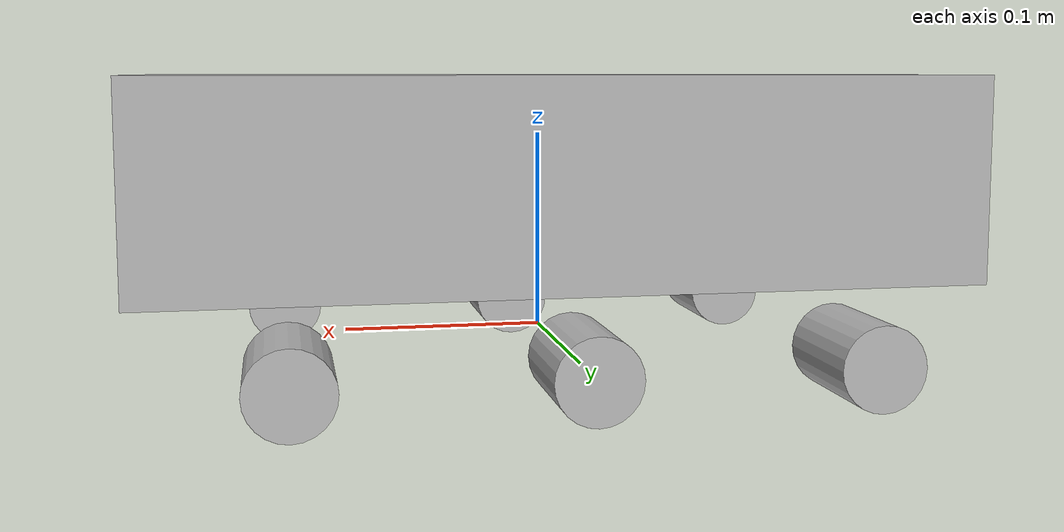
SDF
<sdf version='1.4'>
  <model name='base_robot'>

    <link name='chassis'>
      <pose>0 0 0.08 0 0 0</pose>
      <collision name='collision'>
        <geometry>
          <box>
            <size>.4 .2 .1</size>
          </box>
        </geometry>
      </collision>

      <visual name='visual'>
        <geometry>
          <box>
            <size>.4 .2 .1</size>
          </box>
        </geometry>
      </visual>
    </link>
    <link name='leg_0_1'>
      <pose>0.12 -0.08 0 0 -0 0</pose>
      <inertial>
        <pose>0.01 -0.03 0 1.5708 -0 0</pose>
        <mass>0.02</mass>
        <inertia>
          <ixx>8e-06</ixx>
          <ixy>0</ixy>
          <ixz>0</ixz>
          <iyy>8e-06</iyy>
          <iyz>0</iyz>
          <izz>6.66667e-07</izz>
        </inertia>
      </inertial>
      <collision name='leg_0_1_collision'>
        <pose>0.01 -0.03 0 1.5708 -0 0</pose>
        <geometry>
          <cylinder>
            <length>0.06</length>
            <radius>0.02</radius>
          </cylinder>
        </geometry>
      </collision>
      <visual name='leg_0_1_visual'>
        <pose>0.01 -0.03 0 1.5708 -0 0</pose>
        <geometry>
          <cylinder>
            <length>0.06</length>
            <radius>0.02</radius>
          </cylinder>
        </geometry>
      </visual>
    </link>
    <joint name='body_leg_0' type='revolute'>
      <child>leg_0_1</child>
      <parent>chassis</parent>
      <axis>
        <xyz>0 0 1</xyz>
        <limit>
          <lower>-0.785398</lower>
          <upper>0.785398</upper>
          <effort>20</effort>
          <velocity>2</velocity>
        </limit>
        <dynamics>
          <spring_reference>0</spring_reference>
          <spring_stiffness>0</spring_stiffness>
        </dynamics>
        <use_parent_model_frame>1</use_parent_model_frame>
      </axis>
    </joint>

    <link name='leg_1_1'>
      <pose>-0.01 -0.08 0 0 -0 0</pose>
      <inertial>
        <pose>0.01 -0.03 0 1.5708 -0 0</pose>
        <mass>0.02</mass>
        <inertia>
          <ixx>8e-06</ixx>
          <ixy>0</ixy>
          <ixz>0</ixz>
          <iyy>8e-06</iyy>
          <iyz>0</iyz>
          <izz>6.66667e-07</izz>
        </inertia>
      </inertial>
      <collision name='leg_1_1_collision'>
        <pose>0.01 -0.03 0 1.5708 -0 0</pose>
        <geometry>
          <cylinder>
            <length>0.06</length>
            <radius>0.02</radius>
          </cylinder>
        </geometry>
      </collision>
      <visual name='leg_1_1_visual'>
        <pose>0.01 -0.03 0 1.5708 -0 0</pose>
        <geometry>
          <cylinder>
            <length>0.06</length>
            <radius>0.02</radius>
          </cylinder>
        </geometry>
      </visual>
    </link>
    <joint name='body_leg_1' type='revolute'>
      <child>leg_1_1</child>
      <parent>chassis</parent>
      <axis>
        <xyz>0 0 1</xyz>
        <limit>
          <lower>-0.785398</lower>
          <upper>0.785398</upper>
          <effort>20</effort>
          <velocity>2</velocity>
        </limit>
        <dynamics>
          <spring_reference>0</spring_reference>
          <spring_stiffness>0</spring_stiffness>
        </dynamics>
        <use_parent_model_frame>1</use_parent_model_frame>
      </axis>
    </joint>

    <link name='leg_2_1'>
      <pose>-0.14 -0.08 0 0 -0 0</pose>
      <inertial>
        <pose>0.01 -0.03 0 1.5708 -0 0</pose>
        <mass>0.02</mass>
        <inertia>
          <ixx>8e-06</ixx>
          <ixy>0</ixy>
          <ixz>0</ixz>
          <iyy>8e-06</iyy>
          <iyz>0</iyz>
          <izz>6.66667e-07</izz>
        </inertia>
      </inertial>
      <collision name='leg_2_1_collision'>
        <pose>0.01 -0.03 0 1.5708 -0 0</pose>
        <geometry>
          <cylinder>
            <length>0.06</length>
            <radius>0.02</radius>
          </cylinder>
        </geometry>
      </collision>
      <visual name='leg_2_1_visual'>
        <pose>0.01 -0.03 0 1.5708 -0 0</pose>
        <geometry>
          <cylinder>
            <length>0.06</length>
            <radius>0.02</radius>
          </cylinder>
        </geometry>
      </visual>
    </link>
    <joint name='body_leg_2' type='revolute'>
      <child>leg_2_1</child>
      <parent>chassis</parent>
      <axis>
        <xyz>0 0 1</xyz>
        <limit>
          <lower>-0.785398</lower>
          <upper>0.785398</upper>
          <effort>20</effort>
          <velocity>2</velocity>
        </limit>
        <dynamics>
          <spring_reference>0</spring_reference>
          <spring_stiffness>0</spring_stiffness>
        </dynamics>
        <use_parent_model_frame>1</use_parent_model_frame>
      </axis>
    </joint>

    <link name='leg_3_1'>
      <pose>-0.14 0.08 0 0 -0 0</pose>
      <inertial>
        <pose>0.01 0.03 0 1.5708 -0 0</pose>
        <mass>0.02</mass>
        <inertia>
          <ixx>8e-06</ixx>
          <ixy>0</ixy>
          <ixz>0</ixz>
          <iyy>8e-06</iyy>
          <iyz>0</iyz>
          <izz>6.66667e-07</izz>
        </inertia>
      </inertial>
      <collision name='leg_3_1_collision'>
        <pose>0.01 0.03 0 1.5708 -0 0</pose>
        <geometry>
          <cylinder>
            <length>0.06</length>
            <radius>0.02</radius>
          </cylinder>
        </geometry>
      </collision>
      <visual name='leg_3_1_visual'>
        <pose>0.01 0.03 0 1.5708 -0 0</pose>
        <geometry>
          <cylinder>
            <length>0.06</length>
            <radius>0.02</radius>
          </cylinder>
        </geometry>
      </visual>
    </link>
    <joint name='body_leg_3' type='revolute'>
      <child>leg_3_1</child>
      <parent>chassis</parent>
      <axis>
        <xyz>0 0 1</xyz>
        <limit>
          <lower>-0.785398</lower>
          <upper>0.785398</upper>
          <effort>20</effort>
          <velocity>2</velocity>
        </limit>
        <dynamics>
          <spring_reference>0</spring_reference>
          <spring_stiffness>0</spring_stiffness>
        </dynamics>
        <use_parent_model_frame>1</use_parent_model_frame>
      </axis>
    </joint>

    <link name='leg_4_1'>
      <pose>-0.01 0.08 0 0 -0 0</pose>
      <inertial>
        <pose>0.01 0.03 0 1.5708 -0 0</pose>
        <mass>0.02</mass>
        <inertia>
          <ixx>8e-06</ixx>
          <ixy>0</ixy>
          <ixz>0</ixz>
          <iyy>8e-06</iyy>
          <iyz>0</iyz>
          <izz>6.66667e-07</izz>
        </inertia>
      </inertial>
      <collision name='leg_4_1_collision'>
        <pose>0.01 0.03 0 1.5708 -0 0</pose>
        <geometry>
          <cylinder>
            <length>0.06</length>
            <radius>0.02</radius>
          </cylinder>
        </geometry>
      </collision>
      <visual name='leg_4_1_visual'>
        <pose>0.01 0.03 0 1.5708 -0 0</pose>
        <geometry>
          <cylinder>
            <length>0.06</length>
            <radius>0.02</radius>
          </cylinder>
        </geometry>
      </visual>
    </link>
    <joint name='body_leg_4' type='revolute'>
      <child>leg_4_1</child>
      <parent>chassis</parent>
      <axis>
        <xyz>0 0 1</xyz>
        <limit>
          <lower>-0.785398</lower>
          <upper>0.785398</upper>
          <effort>20</effort>
          <velocity>2</velocity>
        </limit>
        <dynamics>
          <spring_reference>0</spring_reference>
          <spring_stiffness>0</spring_stiffness>
        </dynamics>
        <use_parent_model_frame>1</use_parent_model_frame>
      </axis>
    </joint>

    <link name='leg_5_1'>
      <pose>0.12 0.08 0 0 -0 0</pose>
      <inertial>
        <pose>0.01 0.03 0 1.5708 -0 0</pose>
        <mass>0.02</mass>
        <inertia>
          <ixx>8e-06</ixx>
          <ixy>0</ixy>
          <ixz>0</ixz>
          <iyy>8e-06</iyy>
          <iyz>0</iyz>
          <izz>6.66667e-07</izz>
        </inertia>
      </inertial>
      <collision name='leg_5_1_collision'>
        <pose>0.01 0.03 0 1.5708 -0 0</pose>
        <geometry>
          <cylinder>
            <length>0.06</length>
            <radius>0.02</radius>
          </cylinder>
        </geometry>
      </collision>
      <visual name='leg_5_1_visual'>
        <pose>0.01 0.03 0 1.5708 -0 0</pose>
        <geometry>
          <cylinder>
            <length>0.06</length>
            <radius>0.02</radius>
          </cylinder>
        </geometry>
      </visual>
    </link>
    <joint name='body_leg_5' type='revolute'>
      <child>leg_5_1</child>
      <parent>chassis</parent>
      <axis>
        <xyz>0 0 1</xyz>
        <limit>
          <lower>-0.785398</lower>
          <upper>0.785398</upper>
          <effort>20</effort>
          <velocity>2</velocity>
        </limit>
        <dynamics>
          <spring_reference>0</spring_reference>
          <spring_stiffness>0</spring_stiffness>
        </dynamics>
        <use_parent_model_frame>1</use_parent_model_frame>
      </axis>
    </joint>
  </model>
</sdf>
